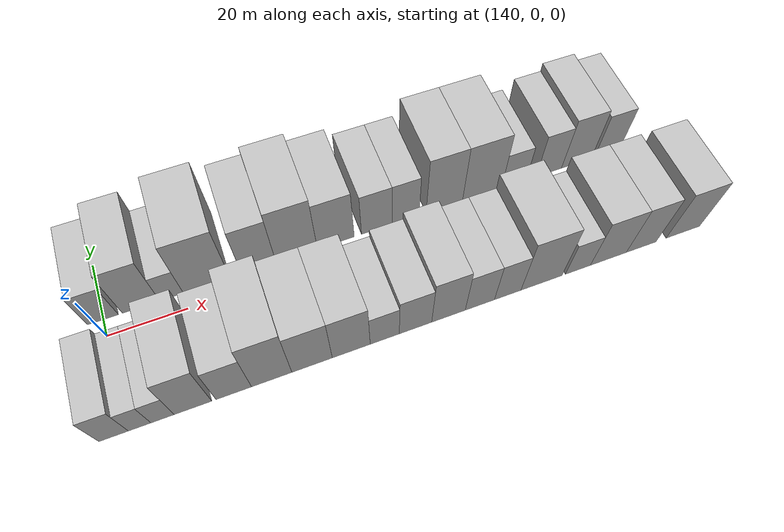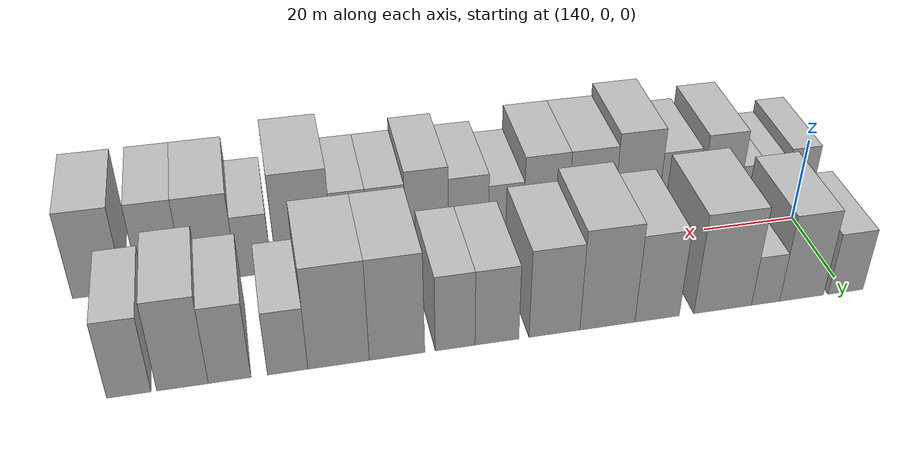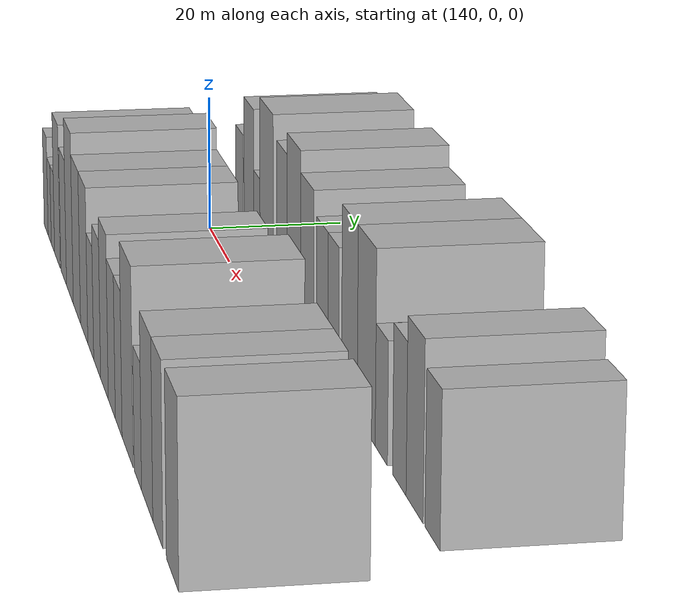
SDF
<sdf version="1.6">
 <world name="default">
  <model name="building_16">
   <static>1</static>
   <pose>139.8515 14.5000 0 0.000000 0.000000 1.570796</pose>
   <link name="link">
    <pose>0 0 7.50 0 0 0</pose>
    <collision name="collision"><geometry><box><size>20.0000 7.4613 15.0000</size></box></geometry></collision>
    <visual name="visual">
     <cast_shadows>0</cast_shadows>
     <geometry><box><size>20.0000 7.4613 15.0000</size></box></geometry>
     <material>
      <script>
       <uri>model://HANNAS_wall/materials/scripts</uri>
       <uri>model://HANNAS_wall/materials/textures</uri>
       <name>vrc/HANNAS_wall</name>
      </script>
     </material>
    </visual>
   </link>
  </model>
  <model name="building_17">
   <static>1</static>
   <pose>149.2267 14.5000 0 0.000000 0.000000 1.570796</pose>
   <link name="link">
    <pose>0 0 10.50 0 0 0</pose>
    <collision name="collision"><geometry><box><size>20.0000 9.2890 21.0000</size></box></geometry></collision>
    <visual name="visual">
     <cast_shadows>0</cast_shadows>
     <geometry><box><size>20.0000 9.2890 21.0000</size></box></geometry>
     <material>
      <script>
       <uri>model://HANNAS_wall/materials/scripts</uri>
       <uri>model://HANNAS_wall/materials/textures</uri>
       <name>vrc/HANNAS_wall</name>
      </script>
     </material>
    </visual>
   </link>
  </model>
  <model name="building_18">
   <static>1</static>
   <pose>156.8171 14.5000 0 0.000000 0.000000 1.570796</pose>
   <link name="link">
    <pose>0 0 6.00 0 0 0</pose>
    <collision name="collision"><geometry><box><size>20.0000 5.8918 12.0000</size></box></geometry></collision>
    <visual name="visual">
     <cast_shadows>0</cast_shadows>
     <geometry><box><size>20.0000 5.8918 12.0000</size></box></geometry>
     <material>
      <script>
       <uri>model://HANNAS_wall/materials/scripts</uri>
       <uri>model://HANNAS_wall/materials/textures</uri>
       <name>vrc/HANNAS_wall</name>
      </script>
     </material>
    </visual>
   </link>
  </model>
  <model name="building_19">
   <static>1</static>
   <pose>165.7413 14.5000 0 0.000000 0.000000 1.570796</pose>
   <link name="link">
    <pose>0 0 12.00 0 0 0</pose>
    <collision name="collision"><geometry><box><size>20.0000 11.9566 24.0000</size></box></geometry></collision>
    <visual name="visual">
     <cast_shadows>0</cast_shadows>
     <geometry><box><size>20.0000 11.9566 24.0000</size></box></geometry>
     <material>
      <script>
       <uri>model://HANNAS_wall/materials/scripts</uri>
       <uri>model://HANNAS_wall/materials/textures</uri>
       <name>vrc/HANNAS_wall</name>
      </script>
     </material>
    </visual>
   </link>
  </model>
  <model name="building_20">
   <static>1</static>
   <pose>179.2212 14.5000 0 0.000000 0.000000 1.570796</pose>
   <link name="link">
    <pose>0 0 10.50 0 0 0</pose>
    <collision name="collision"><geometry><box><size>20.0000 9.0032 21.0000</size></box></geometry></collision>
    <visual name="visual">
     <cast_shadows>0</cast_shadows>
     <geometry><box><size>20.0000 9.0032 21.0000</size></box></geometry>
     <material>
      <script>
       <uri>model://HANNAS_wall/materials/scripts</uri>
       <uri>model://HANNAS_wall/materials/textures</uri>
       <name>vrc/HANNAS_wall</name>
      </script>
     </material>
    </visual>
   </link>
  </model>
  <model name="building_21">
   <static>1</static>
   <pose>189.2372 14.5000 0 0.000000 0.000000 1.570796</pose>
   <link name="link">
    <pose>0 0 12.00 0 0 0</pose>
    <collision name="collision"><geometry><box><size>20.0000 11.0289 24.0000</size></box></geometry></collision>
    <visual name="visual">
     <cast_shadows>0</cast_shadows>
     <geometry><box><size>20.0000 11.0289 24.0000</size></box></geometry>
     <material>
      <script>
       <uri>model://HANNAS_wall/materials/scripts</uri>
       <uri>model://HANNAS_wall/materials/textures</uri>
       <name>vrc/HANNAS_wall</name>
      </script>
     </material>
    </visual>
   </link>
  </model>
  <model name="building_22">
   <static>1</static>
   <pose>199.7666 14.5000 0 0.000000 0.000000 1.570796</pose>
   <link name="link">
    <pose>0 0 10.50 0 0 0</pose>
    <collision name="collision"><geometry><box><size>20.0000 10.0298 21.0000</size></box></geometry></collision>
    <visual name="visual">
     <cast_shadows>0</cast_shadows>
     <geometry><box><size>20.0000 10.0298 21.0000</size></box></geometry>
     <material>
      <script>
       <uri>model://HANNAS_wall/materials/scripts</uri>
       <uri>model://HANNAS_wall/materials/textures</uri>
       <name>vrc/HANNAS_wall</name>
      </script>
     </material>
    </visual>
   </link>
  </model>
  <model name="building_23">
   <static>1</static>
   <pose>211.0317 14.5000 0 0.000000 0.000000 1.570796</pose>
   <link name="link">
    <pose>0 0 9.00 0 0 0</pose>
    <collision name="collision"><geometry><box><size>20.0000 8.5003 18.0000</size></box></geometry></collision>
    <visual name="visual">
     <cast_shadows>0</cast_shadows>
     <geometry><box><size>20.0000 8.5003 18.0000</size></box></geometry>
     <material>
      <script>
       <uri>model://HANNAS_wall/materials/scripts</uri>
       <uri>model://HANNAS_wall/materials/textures</uri>
       <name>vrc/HANNAS_wall</name>
      </script>
     </material>
    </visual>
   </link>
  </model>
  <model name="building_24">
   <static>1</static>
   <pose>219.0821 14.5000 0 0.000000 0.000000 1.570796</pose>
   <link name="link">
    <pose>0 0 9.00 0 0 0</pose>
    <collision name="collision"><geometry><box><size>20.0000 7.6005 18.0000</size></box></geometry></collision>
    <visual name="visual">
     <cast_shadows>0</cast_shadows>
     <geometry><box><size>20.0000 7.6005 18.0000</size></box></geometry>
     <material>
      <script>
       <uri>model://HANNAS_wall/materials/scripts</uri>
       <uri>model://HANNAS_wall/materials/textures</uri>
       <name>vrc/HANNAS_wall</name>
      </script>
     </material>
    </visual>
   </link>
  </model>
  <model name="building_25">
   <static>1</static>
   <pose>230.1089 14.5000 0 0.000000 0.000000 1.570796</pose>
   <link name="link">
    <pose>0 0 12.00 0 0 0</pose>
    <collision name="collision"><geometry><box><size>20.0000 10.4532 24.0000</size></box></geometry></collision>
    <visual name="visual">
     <cast_shadows>0</cast_shadows>
     <geometry><box><size>20.0000 10.4532 24.0000</size></box></geometry>
     <material>
      <script>
       <uri>model://HANNAS_wall/materials/scripts</uri>
       <uri>model://HANNAS_wall/materials/textures</uri>
       <name>vrc/HANNAS_wall</name>
      </script>
     </material>
    </visual>
   </link>
  </model>
  <model name="building_26">
   <static>1</static>
   <pose>241.0479 14.5000 0 0.000000 0.000000 1.570796</pose>
   <link name="link">
    <pose>0 0 12.00 0 0 0</pose>
    <collision name="collision"><geometry><box><size>20.0000 11.4248 24.0000</size></box></geometry></collision>
    <visual name="visual">
     <cast_shadows>0</cast_shadows>
     <geometry><box><size>20.0000 11.4248 24.0000</size></box></geometry>
     <material>
      <script>
       <uri>model://HANNAS_wall/materials/scripts</uri>
       <uri>model://HANNAS_wall/materials/textures</uri>
       <name>vrc/HANNAS_wall</name>
      </script>
     </material>
    </visual>
   </link>
  </model>
  <model name="building_27">
   <static>1</static>
   <pose>250.4484 14.5000 0 0.000000 0.000000 1.570796</pose>
   <link name="link">
    <pose>0 0 7.50 0 0 0</pose>
    <collision name="collision"><geometry><box><size>20.0000 7.3761 15.0000</size></box></geometry></collision>
    <visual name="visual">
     <cast_shadows>0</cast_shadows>
     <geometry><box><size>20.0000 7.3761 15.0000</size></box></geometry>
     <material>
      <script>
       <uri>model://HANNAS_wall/materials/scripts</uri>
       <uri>model://HANNAS_wall/materials/textures</uri>
       <name>vrc/HANNAS_wall</name>
      </script>
     </material>
    </visual>
   </link>
  </model>
  <model name="building_28">
   <static>1</static>
   <pose>260.9795 14.5000 0 0.000000 0.000000 1.570796</pose>
   <link name="link">
    <pose>0 0 9.00 0 0 0</pose>
    <collision name="collision"><geometry><box><size>20.0000 7.6862 18.0000</size></box></geometry></collision>
    <visual name="visual">
     <cast_shadows>0</cast_shadows>
     <geometry><box><size>20.0000 7.6862 18.0000</size></box></geometry>
     <material>
      <script>
       <uri>model://HANNAS_wall/materials/scripts</uri>
       <uri>model://HANNAS_wall/materials/textures</uri>
       <name>vrc/HANNAS_wall</name>
      </script>
     </material>
    </visual>
   </link>
  </model>
  <model name="building_29">
   <static>1</static>
   <pose>269.4135 14.5000 0 0.000000 0.000000 1.570796</pose>
   <link name="link">
    <pose>0 0 10.50 0 0 0</pose>
    <collision name="collision"><geometry><box><size>20.0000 9.1818 21.0000</size></box></geometry></collision>
    <visual name="visual">
     <cast_shadows>0</cast_shadows>
     <geometry><box><size>20.0000 9.1818 21.0000</size></box></geometry>
     <material>
      <script>
       <uri>model://HANNAS_wall/materials/scripts</uri>
       <uri>model://HANNAS_wall/materials/textures</uri>
       <name>vrc/HANNAS_wall</name>
      </script>
     </material>
    </visual>
   </link>
  </model>
  <model name="building_30">
   <static>1</static>
   <pose>278.8989 14.5000 0 0.000000 0.000000 1.570796</pose>
   <link name="link">
    <pose>0 0 9.00 0 0 0</pose>
    <collision name="collision"><geometry><box><size>20.0000 7.7890 18.0000</size></box></geometry></collision>
    <visual name="visual">
     <cast_shadows>0</cast_shadows>
     <geometry><box><size>20.0000 7.7890 18.0000</size></box></geometry>
     <material>
      <script>
       <uri>model://HANNAS_wall/materials/scripts</uri>
       <uri>model://HANNAS_wall/materials/textures</uri>
       <name>vrc/HANNAS_wall</name>
      </script>
     </material>
    </visual>
   </link>
  </model>
  <model name="building_46">
   <static>1</static>
   <pose>137.2052 -14.5000 0 0.000000 0.000000 1.570796</pose>
   <link name="link">
    <pose>0 0 7.50 0 0 0</pose>
    <collision name="collision"><geometry><box><size>20.0000 6.6397 15.0000</size></box></geometry></collision>
    <visual name="visual">
     <cast_shadows>0</cast_shadows>
     <geometry><box><size>20.0000 6.6397 15.0000</size></box></geometry>
     <material>
      <script>
       <uri>model://HANNAS_wall/materials/scripts</uri>
       <uri>model://HANNAS_wall/materials/textures</uri>
       <name>vrc/HANNAS_wall</name>
      </script>
     </material>
    </visual>
   </link>
  </model>
  <model name="building_47">
   <static>1</static>
   <pose>143.0954 -14.5000 0 0.000000 0.000000 1.570796</pose>
   <link name="link">
    <pose>0 0 6.00 0 0 0</pose>
    <collision name="collision"><geometry><box><size>20.0000 5.1407 12.0000</size></box></geometry></collision>
    <visual name="visual">
     <cast_shadows>0</cast_shadows>
     <geometry><box><size>20.0000 5.1407 12.0000</size></box></geometry>
     <material>
      <script>
       <uri>model://HANNAS_wall/materials/scripts</uri>
       <uri>model://HANNAS_wall/materials/textures</uri>
       <name>vrc/HANNAS_wall</name>
      </script>
     </material>
    </visual>
   </link>
  </model>
  <model name="building_48">
   <static>1</static>
   <pose>148.3565 -14.5000 0 0.000000 0.000000 1.570796</pose>
   <link name="link">
    <pose>0 0 6.00 0 0 0</pose>
    <collision name="collision"><geometry><box><size>20.0000 5.3815 12.0000</size></box></geometry></collision>
    <visual name="visual">
     <cast_shadows>0</cast_shadows>
     <geometry><box><size>20.0000 5.3815 12.0000</size></box></geometry>
     <material>
      <script>
       <uri>model://HANNAS_wall/materials/scripts</uri>
       <uri>model://HANNAS_wall/materials/textures</uri>
       <name>vrc/HANNAS_wall</name>
      </script>
     </material>
    </visual>
   </link>
  </model>
  <model name="building_49">
   <static>1</static>
   <pose>155.4317 -14.5000 0 0.000000 0.000000 1.570796</pose>
   <link name="link">
    <pose>0 0 10.50 0 0 0</pose>
    <collision name="collision"><geometry><box><size>20.0000 8.7690 21.0000</size></box></geometry></collision>
    <visual name="visual">
     <cast_shadows>0</cast_shadows>
     <geometry><box><size>20.0000 8.7690 21.0000</size></box></geometry>
     <material>
      <script>
       <uri>model://HANNAS_wall/materials/scripts</uri>
       <uri>model://HANNAS_wall/materials/textures</uri>
       <name>vrc/HANNAS_wall</name>
      </script>
     </material>
    </visual>
   </link>
  </model>
  <model name="building_50">
   <static>1</static>
   <pose>165.0550 -14.5000 0 0.000000 0.000000 1.570796</pose>
   <link name="link">
    <pose>0 0 9.00 0 0 0</pose>
    <collision name="collision"><geometry><box><size>20.0000 8.4775 18.0000</size></box></geometry></collision>
    <visual name="visual">
     <cast_shadows>0</cast_shadows>
     <geometry><box><size>20.0000 8.4775 18.0000</size></box></geometry>
     <material>
      <script>
       <uri>model://HANNAS_wall/materials/scripts</uri>
       <uri>model://HANNAS_wall/materials/textures</uri>
       <name>vrc/HANNAS_wall</name>
      </script>
     </material>
    </visual>
   </link>
  </model>
  <model name="building_51">
   <static>1</static>
   <pose>174.1938 -14.5000 0 0.000000 0.000000 1.570796</pose>
   <link name="link">
    <pose>0 0 12.00 0 0 0</pose>
    <collision name="collision"><geometry><box><size>20.0000 9.8002 24.0000</size></box></geometry></collision>
    <visual name="visual">
     <cast_shadows>0</cast_shadows>
     <geometry><box><size>20.0000 9.8002 24.0000</size></box></geometry>
     <material>
      <script>
       <uri>model://HANNAS_wall/materials/scripts</uri>
       <uri>model://HANNAS_wall/materials/textures</uri>
       <name>vrc/HANNAS_wall</name>
      </script>
     </material>
    </visual>
   </link>
  </model>
  <model name="building_52">
   <static>1</static>
   <pose>184.0981 -14.5000 0 0.000000 0.000000 1.570796</pose>
   <link name="link">
    <pose>0 0 10.50 0 0 0</pose>
    <collision name="collision"><geometry><box><size>20.0000 10.0084 21.0000</size></box></geometry></collision>
    <visual name="visual">
     <cast_shadows>0</cast_shadows>
     <geometry><box><size>20.0000 10.0084 21.0000</size></box></geometry>
     <material>
      <script>
       <uri>model://HANNAS_wall/materials/scripts</uri>
       <uri>model://HANNAS_wall/materials/textures</uri>
       <name>vrc/HANNAS_wall</name>
      </script>
     </material>
    </visual>
   </link>
  </model>
  <model name="building_53">
   <static>1</static>
   <pose>193.8892 -14.5000 0 0.000000 0.000000 1.570796</pose>
   <link name="link">
    <pose>0 0 10.50 0 0 0</pose>
    <collision name="collision"><geometry><box><size>20.0000 9.5739 21.0000</size></box></geometry></collision>
    <visual name="visual">
     <cast_shadows>0</cast_shadows>
     <geometry><box><size>20.0000 9.5739 21.0000</size></box></geometry>
     <material>
      <script>
       <uri>model://HANNAS_wall/materials/scripts</uri>
       <uri>model://HANNAS_wall/materials/textures</uri>
       <name>vrc/HANNAS_wall</name>
      </script>
     </material>
    </visual>
   </link>
  </model>
  <model name="building_54">
   <static>1</static>
   <pose>202.4062 -14.5000 0 0.000000 0.000000 1.570796</pose>
   <link name="link">
    <pose>0 0 7.50 0 0 0</pose>
    <collision name="collision"><geometry><box><size>20.0000 7.4600 15.0000</size></box></geometry></collision>
    <visual name="visual">
     <cast_shadows>0</cast_shadows>
     <geometry><box><size>20.0000 7.4600 15.0000</size></box></geometry>
     <material>
      <script>
       <uri>model://HANNAS_wall/materials/scripts</uri>
       <uri>model://HANNAS_wall/materials/textures</uri>
       <name>vrc/HANNAS_wall</name>
      </script>
     </material>
    </visual>
   </link>
  </model>
  <model name="building_55">
   <static>1</static>
   <pose>210.3607 -14.5000 0 0.000000 0.000000 1.570796</pose>
   <link name="link">
    <pose>0 0 9.00 0 0 0</pose>
    <collision name="collision"><geometry><box><size>20.0000 8.4490 18.0000</size></box></geometry></collision>
    <visual name="visual">
     <cast_shadows>0</cast_shadows>
     <geometry><box><size>20.0000 8.4490 18.0000</size></box></geometry>
     <material>
      <script>
       <uri>model://HANNAS_wall/materials/scripts</uri>
       <uri>model://HANNAS_wall/materials/textures</uri>
       <name>vrc/HANNAS_wall</name>
      </script>
     </material>
    </visual>
   </link>
  </model>
  <model name="building_56">
   <static>1</static>
   <pose>219.0444 -14.5000 0 0.000000 0.000000 1.570796</pose>
   <link name="link">
    <pose>0 0 10.50 0 0 0</pose>
    <collision name="collision"><geometry><box><size>20.0000 8.9184 21.0000</size></box></geometry></collision>
    <visual name="visual">
     <cast_shadows>0</cast_shadows>
     <geometry><box><size>20.0000 8.9184 21.0000</size></box></geometry>
     <material>
      <script>
       <uri>model://HANNAS_wall/materials/scripts</uri>
       <uri>model://HANNAS_wall/materials/textures</uri>
       <name>vrc/HANNAS_wall</name>
      </script>
     </material>
    </visual>
   </link>
  </model>
  <model name="building_57">
   <static>1</static>
   <pose>227.4409 -14.5000 0 0.000000 0.000000 1.570796</pose>
   <link name="link">
    <pose>0 0 9.00 0 0 0</pose>
    <collision name="collision"><geometry><box><size>20.0000 7.8746 18.0000</size></box></geometry></collision>
    <visual name="visual">
     <cast_shadows>0</cast_shadows>
     <geometry><box><size>20.0000 7.8746 18.0000</size></box></geometry>
     <material>
      <script>
       <uri>model://HANNAS_wall/materials/scripts</uri>
       <uri>model://HANNAS_wall/materials/textures</uri>
       <name>vrc/HANNAS_wall</name>
      </script>
     </material>
    </visual>
   </link>
  </model>
  <model name="building_58">
   <static>1</static>
   <pose>235.0035 -14.5000 0 0.000000 0.000000 1.570796</pose>
   <link name="link">
    <pose>0 0 9.00 0 0 0</pose>
    <collision name="collision"><geometry><box><size>20.0000 7.2507 18.0000</size></box></geometry></collision>
    <visual name="visual">
     <cast_shadows>0</cast_shadows>
     <geometry><box><size>20.0000 7.2507 18.0000</size></box></geometry>
     <material>
      <script>
       <uri>model://HANNAS_wall/materials/scripts</uri>
       <uri>model://HANNAS_wall/materials/textures</uri>
       <name>vrc/HANNAS_wall</name>
      </script>
     </material>
    </visual>
   </link>
  </model>
  <model name="building_59">
   <static>1</static>
   <pose>244.3486 -14.5000 0 0.000000 0.000000 1.570796</pose>
   <link name="link">
    <pose>0 0 12.00 0 0 0</pose>
    <collision name="collision"><geometry><box><size>20.0000 11.4393 24.0000</size></box></geometry></collision>
    <visual name="visual">
     <cast_shadows>0</cast_shadows>
     <geometry><box><size>20.0000 11.4393 24.0000</size></box></geometry>
     <material>
      <script>
       <uri>model://HANNAS_wall/materials/scripts</uri>
       <uri>model://HANNAS_wall/materials/textures</uri>
       <name>vrc/HANNAS_wall</name>
      </script>
     </material>
    </visual>
   </link>
  </model>
  <model name="building_60">
   <static>1</static>
   <pose>254.5909 -14.5000 0 0.000000 0.000000 1.570796</pose>
   <link name="link">
    <pose>0 0 7.50 0 0 0</pose>
    <collision name="collision"><geometry><box><size>20.0000 7.0454 15.0000</size></box></geometry></collision>
    <visual name="visual">
     <cast_shadows>0</cast_shadows>
     <geometry><box><size>20.0000 7.0454 15.0000</size></box></geometry>
     <material>
      <script>
       <uri>model://HANNAS_wall/materials/scripts</uri>
       <uri>model://HANNAS_wall/materials/textures</uri>
       <name>vrc/HANNAS_wall</name>
      </script>
     </material>
    </visual>
   </link>
  </model>
  <model name="building_61">
   <static>1</static>
   <pose>263.3152 -14.5000 0 0.000000 0.000000 1.570796</pose>
   <link name="link">
    <pose>0 0 10.50 0 0 0</pose>
    <collision name="collision"><geometry><box><size>20.0000 10.4032 21.0000</size></box></geometry></collision>
    <visual name="visual">
     <cast_shadows>0</cast_shadows>
     <geometry><box><size>20.0000 10.4032 21.0000</size></box></geometry>
     <material>
      <script>
       <uri>model://HANNAS_wall/materials/scripts</uri>
       <uri>model://HANNAS_wall/materials/textures</uri>
       <name>vrc/HANNAS_wall</name>
      </script>
     </material>
    </visual>
   </link>
  </model>
  <model name="building_62">
   <static>1</static>
   <pose>272.8815 -14.5000 0 0.000000 0.000000 1.570796</pose>
   <link name="link">
    <pose>0 0 10.50 0 0 0</pose>
    <collision name="collision"><geometry><box><size>20.0000 8.7294 21.0000</size></box></geometry></collision>
    <visual name="visual">
     <cast_shadows>0</cast_shadows>
     <geometry><box><size>20.0000 8.7294 21.0000</size></box></geometry>
     <material>
      <script>
       <uri>model://HANNAS_wall/materials/scripts</uri>
       <uri>model://HANNAS_wall/materials/textures</uri>
       <name>vrc/HANNAS_wall</name>
      </script>
     </material>
    </visual>
   </link>
  </model>
  <model name="building_63">
   <static>1</static>
   <pose>285.2624 -14.5000 0 0.000000 0.000000 1.570796</pose>
   <link name="link">
    <pose>0 0 10.50 0 0 0</pose>
    <collision name="collision"><geometry><box><size>20.0000 10.0323 21.0000</size></box></geometry></collision>
    <visual name="visual">
     <cast_shadows>0</cast_shadows>
     <geometry><box><size>20.0000 10.0323 21.0000</size></box></geometry>
     <material>
      <script>
       <uri>model://HANNAS_wall/materials/scripts</uri>
       <uri>model://HANNAS_wall/materials/textures</uri>
       <name>vrc/HANNAS_wall</name>
      </script>
     </material>
    </visual>
   </link>
  </model>
 </world>
</sdf>
